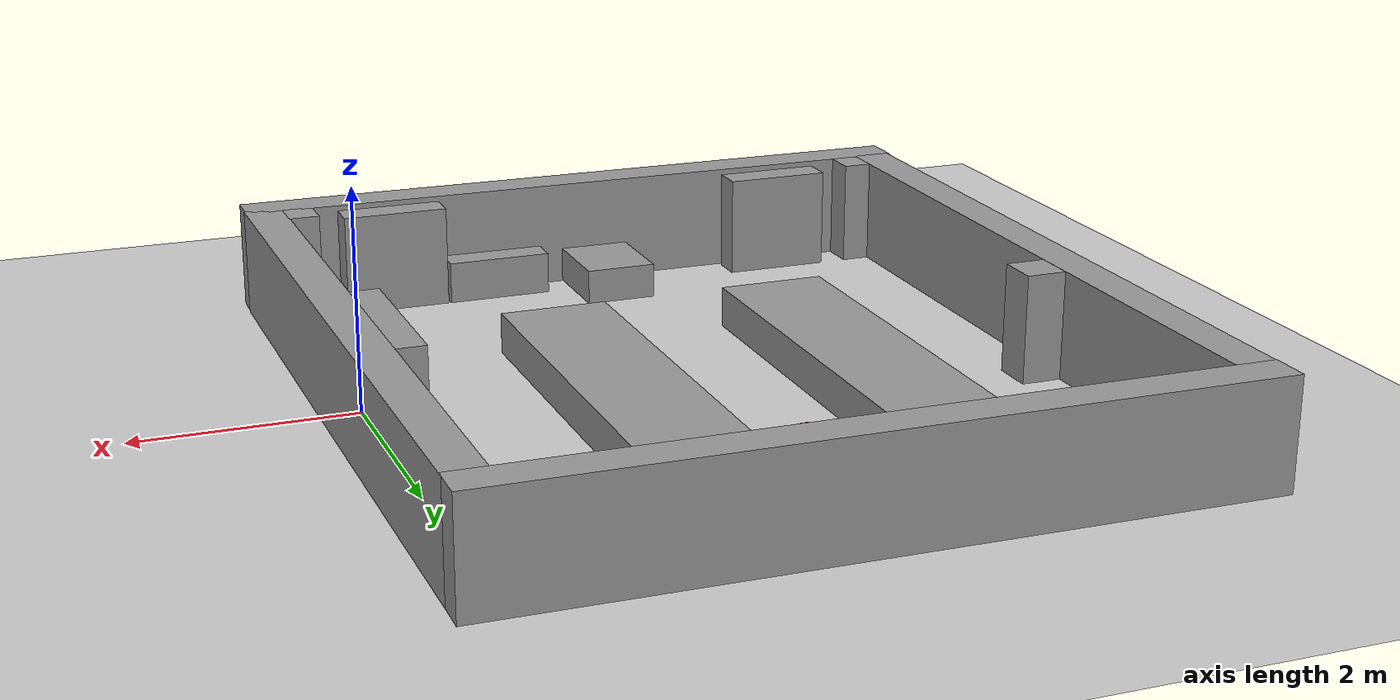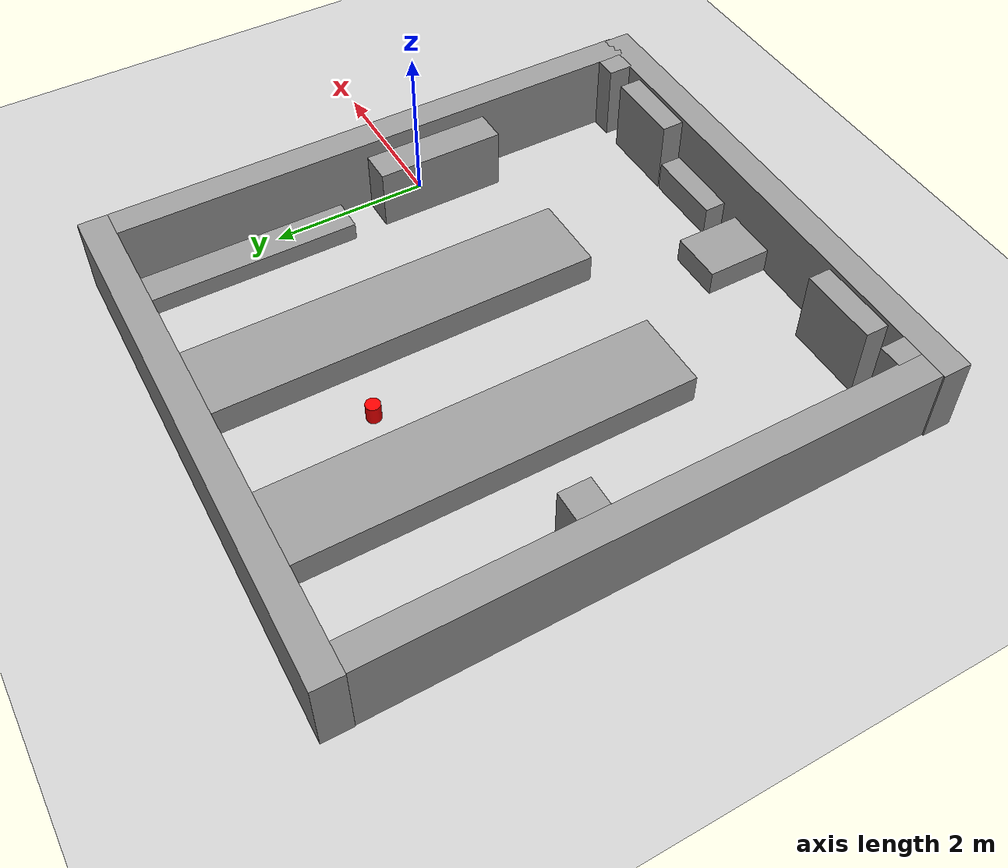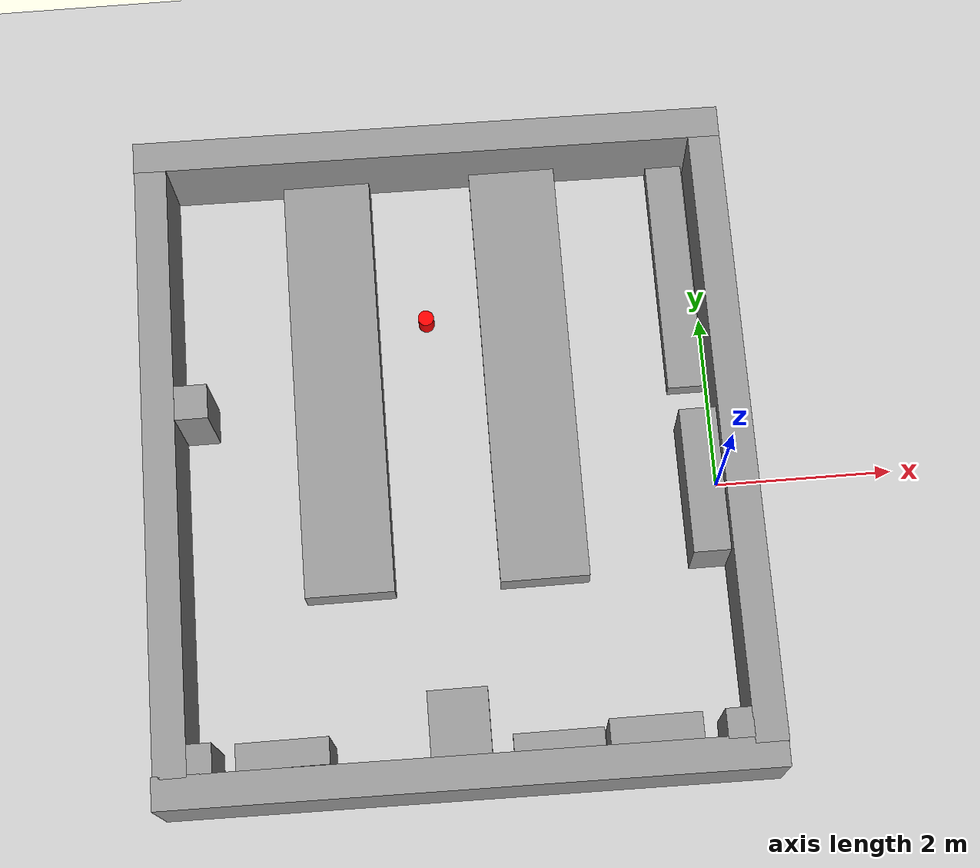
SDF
<sdf version="1.7">
 <world name="default">
  <light name="sun" type="directional">
   <cast_shadows>0</cast_shadows>
   <pose>0 0 10 0 -0 0</pose>
   <diffuse>0.8 0.8 0.8 1</diffuse>
   <specular>0.2 0.2 0.2 1</specular>
   <attenuation>
    <range>1000</range>
    <constant>0.9</constant>
    <linear>0.01</linear>
    <quadratic>0.001</quadratic>
   </attenuation>
   <direction>-0.5 0.1 -0.9</direction>
   <spot><inner_angle>0</inner_angle><outer_angle>0</outer_angle><falloff>0</falloff></spot>
  </light>
  <model name="ground_plane">
   <static>1</static>
   <link name="link">
    <collision name="collision">
     <geometry><plane><normal>0 0 1</normal><size>100 100</size></plane></geometry>
     <surface><friction><ode><mu>100</mu><mu2>50</mu2></ode></friction></surface>
    </collision>
    <visual name="visual">
     <cast_shadows>0</cast_shadows>
     <geometry><plane><normal>0 0 1</normal><size>100 100</size></plane></geometry>
     <material>
      <script><uri>file://media/materials/scripts/gazebo.material</uri><name>Gazebo/Grey</name></script>
     </material>
    </visual>
   </link>
  </model>
  <gravity>0 0 -9.8</gravity>
  <scene><ambient>0.4 0.4 0.4 1</ambient><background>0.7 0.7 0.7 1</background><shadows>1</shadows></scene>
  <magnetic_field>6e-06 2.3e-05 -4.2e-05</magnetic_field>
  <atmosphere type="adiabatic"/>
  <physics type="ode">
   <max_step_size>0.001</max_step_size>
   <real_time_factor>1</real_time_factor>
   <real_time_update_rate>1000</real_time_update_rate>
  </physics>
  <audio><device>default</device></audio>
  <spherical_coordinates>
   <surface_model>EARTH_WGS84</surface_model>
   <latitude_deg>0</latitude_deg>
   <longitude_deg>0</longitude_deg>
   <elevation>0</elevation>
   <heading_deg>0</heading_deg>
  </spherical_coordinates>
  <model name="unit_wall">
   <link name="link">
    <inertial>
     <mass>2.52337</mass>
     <inertia><ixx>10.3518</ixx><ixy>0</ixy><ixz>0</ixz><iyy>0.238043</iyy><iyz>0</iyz><izz>10.1693</izz></inertia>
    </inertial>
    <pose>-0.734513 -2.0159 0 0 -0 0</pose>
    <visual name="visual">
     <geometry><box><size>0.363354 6.94468 1</size></box></geometry>
     <material>
      <script><name>Gazebo/Grey</name><uri>file://media/materials/scripts/gazebo.material</uri></script>
      <shader type="pixel"/>
     </material>
    </visual>
    <collision name="collision">
     <geometry><box><size>0.363354 6.94468 1</size></box></geometry>
     <surface>
      <friction>
       <ode><mu>1</mu><mu2>1</mu2><fdir1>0 0 0</fdir1><slip1>0</slip1><slip2>0</slip2></ode>
       <torsional>
        <coefficient>1</coefficient>
        <patch_radius>0</patch_radius>
        <surface_radius>0</surface_radius>
        <use_patch_radius>1</use_patch_radius>
        <ode><slip>0</slip></ode>
       </torsional>
      </friction>
      <bounce><restitution_coefficient>0</restitution_coefficient><threshold>1e+06</threshold></bounce>
      <contact>
       <collide_without_contact>0</collide_without_contact>
       <collide_without_contact_bitmask>1</collide_without_contact_bitmask>
       <collide_bitmask>1</collide_bitmask>
       <ode>
        <soft_cfm>0</soft_cfm>
        <soft_erp>0.2</soft_erp>
        <kp>1e+13</kp>
        <kd>1</kd>
        <max_vel>0.01</max_vel>
        <min_depth>0</min_depth>
       </ode>
       <bullet>
        <split_impulse>1</split_impulse>
        <split_impulse_penetration_threshold>-0.01</split_impulse_penetration_threshold>
        <soft_cfm>0</soft_cfm>
        <soft_erp>0.2</soft_erp>
        <kp>1e+13</kp>
        <kd>1</kd>
       </bullet>
      </contact>
     </surface>
    </collision>
   </link>
   <static>0</static>
   <pose>-5.46117 2.50691 0.5 0 -0 0</pose>
  </model>
  <model name="unit_desk_0">
   <link name="link">
    <inertial>
     <mass>0.190266</mass>
     <inertia>
      <ixx>0.0133624</ixx>
      <ixy>0</ixy>
      <ixz>0</ixz>
      <iyy>0.00889628</iyy>
      <iyz>0</iyz>
      <izz>0.0187968</izz>
     </inertia>
    </inertial>
    <visual name="visual">
     <geometry><box><size>0.672244 0.856498 0.330411</size></box></geometry>
     <material>
      <script><name>Gazebo/Grey</name><uri>file://media/materials/scripts/gazebo.material</uri></script>
      <shader type="pixel"/>
     </material>
    </visual>
    <collision name="collision">
     <geometry><box><size>0.672244 0.856498 0.330411</size></box></geometry>
     <surface>
      <friction>
       <ode><mu>1</mu><mu2>1</mu2><fdir1>0 0 0</fdir1><slip1>0</slip1><slip2>0</slip2></ode>
       <torsional>
        <coefficient>1</coefficient>
        <patch_radius>0</patch_radius>
        <surface_radius>0</surface_radius>
        <use_patch_radius>1</use_patch_radius>
        <ode><slip>0</slip></ode>
       </torsional>
      </friction>
      <bounce><restitution_coefficient>0</restitution_coefficient><threshold>1e+06</threshold></bounce>
      <contact>
       <collide_without_contact>0</collide_without_contact>
       <collide_without_contact_bitmask>1</collide_without_contact_bitmask>
       <collide_bitmask>1</collide_bitmask>
       <ode>
        <soft_cfm>0</soft_cfm>
        <soft_erp>0.2</soft_erp>
        <kp>1e+13</kp>
        <kd>1</kd>
        <max_vel>0.01</max_vel>
        <min_depth>0</min_depth>
       </ode>
       <bullet>
        <split_impulse>1</split_impulse>
        <split_impulse_penetration_threshold>-0.01</split_impulse_penetration_threshold>
        <soft_cfm>0</soft_cfm>
        <soft_erp>0.2</soft_erp>
        <kp>1e+13</kp>
        <kd>1</kd>
       </bullet>
      </contact>
     </surface>
    </collision>
   </link>
   <static>0</static>
   <pose>-3.12578 -2.58489 0.171817 0 -0 0</pose>
  </model>
  <model name="unit_desk2">
   <link name="link">
    <inertial>
     <mass>1.84613</mass>
     <inertia><ixx>3.74016</ixx><ixy>0</ixy><ixz>0</ixz><iyy>0.175529</iyy><iyz>0</iyz><izz>3.87232</izz></inertia>
    </inertial>
    <pose>-0.530357 -2.01838 -0.286727 0 -0 0</pose>
    <visual name="visual">
     <geometry><box><size>1 4.91634 0.375437</size></box></geometry>
     <material>
      <script><name>Gazebo/Grey</name><uri>file://media/materials/scripts/gazebo.material</uri></script>
      <shader type="pixel"/>
     </material>
    </visual>
    <collision name="collision">
     <geometry><box><size>1 4.91634 0.375437</size></box></geometry>
     <surface>
      <friction>
       <ode><mu>1</mu><mu2>1</mu2><fdir1>0 0 0</fdir1><slip1>0</slip1><slip2>0</slip2></ode>
       <torsional>
        <coefficient>1</coefficient>
        <patch_radius>0</patch_radius>
        <surface_radius>0</surface_radius>
        <use_patch_radius>1</use_patch_radius>
        <ode><slip>0</slip></ode>
       </torsional>
      </friction>
      <bounce><restitution_coefficient>0</restitution_coefficient><threshold>1e+06</threshold></bounce>
      <contact>
       <collide_without_contact>0</collide_without_contact>
       <collide_without_contact_bitmask>1</collide_without_contact_bitmask>
       <collide_bitmask>1</collide_bitmask>
       <ode>
        <soft_cfm>0</soft_cfm>
        <soft_erp>0.2</soft_erp>
        <kp>1e+13</kp>
        <kd>1</kd>
        <max_vel>0.01</max_vel>
        <min_depth>0</min_depth>
       </ode>
       <bullet>
        <split_impulse>1</split_impulse>
        <split_impulse_penetration_threshold>-0.01</split_impulse_penetration_threshold>
        <soft_cfm>0</soft_cfm>
        <soft_erp>0.2</soft_erp>
        <kp>1e+13</kp>
        <kd>1</kd>
       </bullet>
      </contact>
     </surface>
    </collision>
   </link>
   <static>0</static>
   <pose>-3.7044 3.44703 0.5 0 -0 0</pose>
  </model>
  <model name="unit_desk2_clone">
   <link name="link">
    <inertial>
     <mass>1.84613</mass>
     <inertia><ixx>3.74016</ixx><ixy>0</ixy><ixz>0</ixz><iyy>0.175529</iyy><iyz>0</iyz><izz>3.87232</izz></inertia>
    </inertial>
    <pose>-0.530357 -2.01838 -0.286727 0 -0 0</pose>
    <visual name="visual">
     <geometry><box><size>1 4.91634 0.375437</size></box></geometry>
     <material>
      <script><name>Gazebo/Grey</name><uri>file://media/materials/scripts/gazebo.material</uri></script>
      <shader type="pixel"/>
     </material>
    </visual>
    <collision name="collision">
     <geometry><box><size>1 4.91634 0.375437</size></box></geometry>
     <surface>
      <friction>
       <ode><mu>1</mu><mu2>1</mu2><fdir1>0 0 0</fdir1><slip1>0</slip1><slip2>0</slip2></ode>
       <torsional>
        <coefficient>1</coefficient>
        <patch_radius>0</patch_radius>
        <surface_radius>0</surface_radius>
        <use_patch_radius>1</use_patch_radius>
        <ode><slip>0</slip></ode>
       </torsional>
      </friction>
      <bounce><restitution_coefficient>0</restitution_coefficient><threshold>1e+06</threshold></bounce>
      <contact>
       <collide_without_contact>0</collide_without_contact>
       <collide_without_contact_bitmask>1</collide_without_contact_bitmask>
       <collide_bitmask>1</collide_bitmask>
       <ode>
        <soft_cfm>0</soft_cfm>
        <soft_erp>0.2</soft_erp>
        <kp>1e+13</kp>
        <kd>1</kd>
        <max_vel>0.01</max_vel>
        <min_depth>0</min_depth>
       </ode>
       <bullet>
        <split_impulse>1</split_impulse>
        <split_impulse_penetration_threshold>-0.01</split_impulse_penetration_threshold>
        <soft_cfm>0</soft_cfm>
        <soft_erp>0.2</soft_erp>
        <kp>1e+13</kp>
        <kd>1</kd>
       </bullet>
      </contact>
     </surface>
    </collision>
   </link>
   <static>0</static>
   <pose>-1.52668 3.4568 0.5 0 -0 0</pose>
  </model>
  <model name="unit_storeage">
   <link name="link">
    <inertial>
     <mass>0.122132</mass>
     <inertia>
      <ixx>0.00263434</ixx>
      <ixy>0</ixy>
      <ixz>0</ixz>
      <iyy>0.0119304</iyy>
      <iyz>0</iyz>
      <izz>0.0110593</izz>
     </inertia>
    </inertial>
    <pose>-0.029061 0.015014 0 0 -0 0</pose>
    <visual name="visual">
     <geometry><box><size>1 0.29432 0.414982</size></box></geometry>
     <material>
      <script><name>Gazebo/Grey</name><uri>file://media/materials/scripts/gazebo.material</uri></script>
      <shader type="pixel"/>
     </material>
    </visual>
    <collision name="collision">
     <geometry><box><size>1 0.29432 0.414982</size></box></geometry>
     <surface>
      <friction>
       <ode><mu>1</mu><mu2>1</mu2><fdir1>0 0 0</fdir1><slip1>0</slip1><slip2>0</slip2></ode>
       <torsional>
        <coefficient>1</coefficient>
        <patch_radius>0</patch_radius>
        <surface_radius>0</surface_radius>
        <use_patch_radius>1</use_patch_radius>
        <ode><slip>0</slip></ode>
       </torsional>
      </friction>
      <bounce><restitution_coefficient>0</restitution_coefficient><threshold>1e+06</threshold></bounce>
      <contact>
       <collide_without_contact>0</collide_without_contact>
       <collide_without_contact_bitmask>1</collide_without_contact_bitmask>
       <collide_bitmask>1</collide_bitmask>
       <ode>
        <soft_cfm>0</soft_cfm>
        <soft_erp>0.2</soft_erp>
        <kp>1e+13</kp>
        <kd>1</kd>
        <max_vel>0.01</max_vel>
        <min_depth>0</min_depth>
       </ode>
       <bullet>
        <split_impulse>1</split_impulse>
        <split_impulse_penetration_threshold>-0.01</split_impulse_penetration_threshold>
        <soft_cfm>0</soft_cfm>
        <soft_erp>0.2</soft_erp>
        <kp>1e+13</kp>
        <kd>1</kd>
       </bullet>
      </contact>
     </surface>
    </collision>
   </link>
   <static>0</static>
   <pose>-2.02423 -2.87506 0.179284 0 -0 0</pose>
  </model>
  <model name="unit_storeage_clone">
   <link name="link">
    <inertial>
     <mass>0.283755</mass>
     <inertia>
      <ixx>0.0240294</ixx>
      <ixy>0</ixy>
      <ixz>0</ixz>
      <iyy>0.0456273</iyy>
      <iyz>0</iyz>
      <izz>0.0256946</izz>
     </inertia>
    </inertial>
    <pose>-0.029061 0.015014 0.287077 0 -0 0</pose>
    <visual name="visual">
     <geometry><box><size>1 0.29432 0.964148</size></box></geometry>
     <material>
      <script><name>Gazebo/Grey</name><uri>file://media/materials/scripts/gazebo.material</uri></script>
      <shader type="pixel"/>
     </material>
    </visual>
    <collision name="collision">
     <geometry><box><size>1 0.29432 0.964148</size></box></geometry>
     <surface>
      <friction>
       <ode><mu>1</mu><mu2>1</mu2><fdir1>0 0 0</fdir1><slip1>0</slip1><slip2>0</slip2></ode>
       <torsional>
        <coefficient>1</coefficient>
        <patch_radius>0</patch_radius>
        <surface_radius>0</surface_radius>
        <use_patch_radius>1</use_patch_radius>
        <ode><slip>0</slip></ode>
       </torsional>
      </friction>
      <bounce><restitution_coefficient>0</restitution_coefficient><threshold>1e+06</threshold></bounce>
      <contact>
       <collide_without_contact>0</collide_without_contact>
       <collide_without_contact_bitmask>1</collide_without_contact_bitmask>
       <collide_bitmask>1</collide_bitmask>
       <ode>
        <soft_cfm>0</soft_cfm>
        <soft_erp>0.2</soft_erp>
        <kp>1e+13</kp>
        <kd>1</kd>
        <max_vel>0.01</max_vel>
        <min_depth>0</min_depth>
       </ode>
       <bullet>
        <split_impulse>1</split_impulse>
        <split_impulse_penetration_threshold>-0.01</split_impulse_penetration_threshold>
        <soft_cfm>0</soft_cfm>
        <soft_erp>0.2</soft_erp>
        <kp>1e+13</kp>
        <kd>1</kd>
       </bullet>
      </contact>
     </surface>
    </collision>
   </link>
   <link name="link_0">
    <inertial>
     <mass>0.09311</mass>
     <inertia>
      <ixx>0.00857543</ixx>
      <ixy>0</ixy>
      <ixz>0</ixz>
      <iyy>0.00839862</iyy>
      <iyz>0</iyz>
      <izz>0.00145572</izz>
     </inertia>
    </inertial>
    <pose>0.856069 0.001923 0.320716 0 -0 0</pose>
    <visual name="visual">
     <geometry><box><size>0.287077 0.324346 1</size></box></geometry>
     <material>
      <lighting>1</lighting>
      <script><uri>file://media/materials/scripts/gazebo.material</uri><name>Gazebo/Grey</name></script>
      <shader type="pixel"/>
     </material>
    </visual>
    <collision name="collision">
     <geometry><box><size>0.287077 0.324346 1</size></box></geometry>
     <surface>
      <friction>
       <ode><mu>1</mu><mu2>1</mu2><fdir1>0 0 0</fdir1><slip1>0</slip1><slip2>0</slip2></ode>
       <torsional>
        <coefficient>1</coefficient>
        <patch_radius>0</patch_radius>
        <surface_radius>0</surface_radius>
        <use_patch_radius>1</use_patch_radius>
        <ode><slip>0</slip></ode>
       </torsional>
      </friction>
      <bounce><restitution_coefficient>0</restitution_coefficient><threshold>1e+06</threshold></bounce>
      <contact>
       <collide_without_contact>0</collide_without_contact>
       <collide_without_contact_bitmask>1</collide_without_contact_bitmask>
       <collide_bitmask>1</collide_bitmask>
       <ode>
        <soft_cfm>0</soft_cfm>
        <soft_erp>0.2</soft_erp>
        <kp>1e+13</kp>
        <kd>1</kd>
        <max_vel>0.01</max_vel>
        <min_depth>0</min_depth>
       </ode>
       <bullet>
        <split_impulse>1</split_impulse>
        <split_impulse_penetration_threshold>-0.01</split_impulse_penetration_threshold>
        <soft_cfm>0</soft_cfm>
        <soft_erp>0.2</soft_erp>
        <kp>1e+13</kp>
        <kd>1</kd>
       </bullet>
      </contact>
     </surface>
    </collision>
   </link>
   <static>0</static>
   <pose>-0.997676 -2.87732 0.179284 0 -0 0</pose>
  </model>
  <model name="unit_wall_clone_1">
   <link name="link">
    <inertial>
     <mass>2.45042</mass>
     <inertia><ixx>9.49131</ixx><ixy>0</ixy><ixz>0</ixz><iyy>0.231161</iyy><iyz>0</iyz><izz>9.31407</izz></inertia>
    </inertial>
    <pose>-0.76105 -2.0159 0 0 -0 0</pose>
    <visual name="visual">
     <geometry><box><size>0.363354 6.7439 1</size></box></geometry>
     <material>
      <script><name>Gazebo/Grey</name><uri>file://media/materials/scripts/gazebo.material</uri></script>
      <shader type="pixel"/>
     </material>
    </visual>
    <collision name="collision">
     <geometry><box><size>0.363354 6.7439 1</size></box></geometry>
     <surface>
      <friction>
       <ode><mu>1</mu><mu2>1</mu2><fdir1>0 0 0</fdir1><slip1>0</slip1><slip2>0</slip2></ode>
       <torsional>
        <coefficient>1</coefficient>
        <patch_radius>0</patch_radius>
        <surface_radius>0</surface_radius>
        <use_patch_radius>1</use_patch_radius>
        <ode><slip>0</slip></ode>
       </torsional>
      </friction>
      <bounce><restitution_coefficient>0</restitution_coefficient><threshold>1e+06</threshold></bounce>
      <contact>
       <collide_without_contact>0</collide_without_contact>
       <collide_without_contact_bitmask>1</collide_without_contact_bitmask>
       <collide_bitmask>1</collide_bitmask>
       <ode>
        <soft_cfm>0</soft_cfm>
        <soft_erp>0.2</soft_erp>
        <kp>1e+13</kp>
        <kd>1</kd>
        <max_vel>0.01</max_vel>
        <min_depth>0</min_depth>
       </ode>
       <bullet>
        <split_impulse>1</split_impulse>
        <split_impulse_penetration_threshold>-0.01</split_impulse_penetration_threshold>
        <soft_cfm>0</soft_cfm>
        <soft_erp>0.2</soft_erp>
        <kp>1e+13</kp>
        <kd>1</kd>
       </bullet>
      </contact>
     </surface>
    </collision>
   </link>
   <static>0</static>
   <pose>-1.0166 -3.94704 0.5 0 0 -1.58124</pose>
  </model>
  <model name="unit_wall_clone_1_clone">
   <link name="link">
    <inertial>
     <mass>2.45042</mass>
     <inertia><ixx>9.49131</ixx><ixy>0</ixy><ixz>0</ixz><iyy>0.231161</iyy><iyz>0</iyz><izz>9.31407</izz></inertia>
    </inertial>
    <pose>-0.76105 -2.0159 0 0 -0 0</pose>
    <visual name="visual">
     <geometry><box><size>0.363354 6.7439 1</size></box></geometry>
     <material>
      <script><name>Gazebo/Grey</name><uri>file://media/materials/scripts/gazebo.material</uri></script>
      <shader type="pixel"/>
     </material>
    </visual>
    <collision name="collision">
     <geometry><box><size>0.363354 6.7439 1</size></box></geometry>
     <surface>
      <friction>
       <ode><mu>1</mu><mu2>1</mu2><fdir1>0 0 0</fdir1><slip1>0</slip1><slip2>0</slip2></ode>
       <torsional>
        <coefficient>1</coefficient>
        <patch_radius>0</patch_radius>
        <surface_radius>0</surface_radius>
        <use_patch_radius>1</use_patch_radius>
        <ode><slip>0</slip></ode>
       </torsional>
      </friction>
      <bounce><restitution_coefficient>0</restitution_coefficient><threshold>1e+06</threshold></bounce>
      <contact>
       <collide_without_contact>0</collide_without_contact>
       <collide_without_contact_bitmask>1</collide_without_contact_bitmask>
       <collide_bitmask>1</collide_bitmask>
       <ode>
        <soft_cfm>0</soft_cfm>
        <soft_erp>0.2</soft_erp>
        <kp>1e+13</kp>
        <kd>1</kd>
        <max_vel>0.01</max_vel>
        <min_depth>0</min_depth>
       </ode>
       <bullet>
        <split_impulse>1</split_impulse>
        <split_impulse_penetration_threshold>-0.01</split_impulse_penetration_threshold>
        <soft_cfm>0</soft_cfm>
        <soft_erp>0.2</soft_erp>
        <kp>1e+13</kp>
        <kd>1</kd>
       </bullet>
      </contact>
     </surface>
    </collision>
   </link>
   <static>0</static>
   <pose>-1.00511 3.32586 0.5 0 0 -1.58124</pose>
  </model>
  <model name="unit_wall_clone">
   <link name="link">
    <inertial>
     <mass>2.59195</mass>
     <inertia><ixx>11.207</ixx><ixy>0</ixy><ixz>0</ixz><iyy>0.244513</iyy><iyz>0</iyz><izz>11.0196</izz></inertia>
    </inertial>
    <pose>-0.734513 -2.0159 0 0 -0 0</pose>
    <visual name="visual">
     <geometry><box><size>0.363354 7.13341 1</size></box></geometry>
     <material>
      <script><name>Gazebo/Grey</name><uri>file://media/materials/scripts/gazebo.material</uri></script>
      <shader type="pixel"/>
     </material>
    </visual>
    <collision name="collision">
     <geometry><box><size>0.363354 7.13341 1</size></box></geometry>
     <surface>
      <friction>
       <ode><mu>1</mu><mu2>1</mu2><fdir1>0 0 0</fdir1><slip1>0</slip1><slip2>0</slip2></ode>
       <torsional>
        <coefficient>1</coefficient>
        <patch_radius>0</patch_radius>
        <surface_radius>0</surface_radius>
        <use_patch_radius>1</use_patch_radius>
        <ode><slip>0</slip></ode>
       </torsional>
      </friction>
      <bounce><restitution_coefficient>0</restitution_coefficient><threshold>1e+06</threshold></bounce>
      <contact>
       <collide_without_contact>0</collide_without_contact>
       <collide_without_contact_bitmask>1</collide_without_contact_bitmask>
       <collide_bitmask>1</collide_bitmask>
       <ode>
        <soft_cfm>0</soft_cfm>
        <soft_erp>0.2</soft_erp>
        <kp>1e+13</kp>
        <kd>1</kd>
        <max_vel>0.01</max_vel>
        <min_depth>0</min_depth>
       </ode>
       <bullet>
        <split_impulse>1</split_impulse>
        <split_impulse_penetration_threshold>-0.01</split_impulse_penetration_threshold>
        <soft_cfm>0</soft_cfm>
        <soft_erp>0.2</soft_erp>
        <kp>1e+13</kp>
        <kd>1</kd>
       </bullet>
      </contact>
     </surface>
    </collision>
   </link>
   <static>0</static>
   <pose>0.910428 2.47745 0.5 0 -0 0</pose>
  </model>
  <model name="unit_storeage_clone_clone">
   <link name="link">
    <inertial>
     <mass>0.283755</mass>
     <inertia>
      <ixx>0.0240294</ixx>
      <ixy>0</ixy>
      <ixz>0</ixz>
      <iyy>0.0456273</iyy>
      <iyz>0</iyz>
      <izz>0.0256946</izz>
     </inertia>
    </inertial>
    <pose>-0.029061 0.015014 0.287077 0 -0 0</pose>
    <visual name="visual">
     <geometry><box><size>1 0.29432 0.964148</size></box></geometry>
     <material>
      <script><name>Gazebo/Grey</name><uri>file://media/materials/scripts/gazebo.material</uri></script>
      <shader type="pixel"/>
     </material>
    </visual>
    <collision name="collision">
     <geometry><box><size>1 0.29432 0.964148</size></box></geometry>
     <surface>
      <friction>
       <ode><mu>1</mu><mu2>1</mu2><fdir1>0 0 0</fdir1><slip1>0</slip1><slip2>0</slip2></ode>
       <torsional>
        <coefficient>1</coefficient>
        <patch_radius>0</patch_radius>
        <surface_radius>0</surface_radius>
        <use_patch_radius>1</use_patch_radius>
        <ode><slip>0</slip></ode>
       </torsional>
      </friction>
      <bounce><restitution_coefficient>0</restitution_coefficient><threshold>1e+06</threshold></bounce>
      <contact>
       <collide_without_contact>0</collide_without_contact>
       <collide_without_contact_bitmask>1</collide_without_contact_bitmask>
       <collide_bitmask>1</collide_bitmask>
       <ode>
        <soft_cfm>0</soft_cfm>
        <soft_erp>0.2</soft_erp>
        <kp>1e+13</kp>
        <kd>1</kd>
        <max_vel>0.01</max_vel>
        <min_depth>0</min_depth>
       </ode>
       <bullet>
        <split_impulse>1</split_impulse>
        <split_impulse_penetration_threshold>-0.01</split_impulse_penetration_threshold>
        <soft_cfm>0</soft_cfm>
        <soft_erp>0.2</soft_erp>
        <kp>1e+13</kp>
        <kd>1</kd>
       </bullet>
      </contact>
     </surface>
    </collision>
   </link>
   <link name="link_0">
    <inertial>
     <mass>0.09311</mass>
     <inertia>
      <ixx>0.00857543</ixx>
      <ixy>0</ixy>
      <ixz>0</ixz>
      <iyy>0.00839862</iyy>
      <iyz>0</iyz>
      <izz>0.00145572</izz>
     </inertia>
    </inertial>
    <pose>0.856069 0.001923 0.320716 0 -0 0</pose>
    <visual name="visual">
     <geometry><box><size>0.287077 0.324346 1</size></box></geometry>
     <material>
      <lighting>1</lighting>
      <script><uri>file://media/materials/scripts/gazebo.material</uri><name>Gazebo/Grey</name></script>
      <shader type="pixel"/>
     </material>
    </visual>
    <collision name="collision">
     <geometry><box><size>0.287077 0.324346 1</size></box></geometry>
     <surface>
      <friction>
       <ode><mu>1</mu><mu2>1</mu2><fdir1>0 0 0</fdir1><slip1>0</slip1><slip2>0</slip2></ode>
       <torsional>
        <coefficient>1</coefficient>
        <patch_radius>0</patch_radius>
        <surface_radius>0</surface_radius>
        <use_patch_radius>1</use_patch_radius>
        <ode><slip>0</slip></ode>
       </torsional>
      </friction>
      <bounce><restitution_coefficient>0</restitution_coefficient><threshold>1e+06</threshold></bounce>
      <contact>
       <collide_without_contact>0</collide_without_contact>
       <collide_without_contact_bitmask>1</collide_without_contact_bitmask>
       <collide_bitmask>1</collide_bitmask>
       <ode>
        <soft_cfm>0</soft_cfm>
        <soft_erp>0.2</soft_erp>
        <kp>1e+13</kp>
        <kd>1</kd>
        <max_vel>0.01</max_vel>
        <min_depth>0</min_depth>
       </ode>
       <bullet>
        <split_impulse>1</split_impulse>
        <split_impulse_penetration_threshold>-0.01</split_impulse_penetration_threshold>
        <soft_cfm>0</soft_cfm>
        <soft_erp>0.2</soft_erp>
        <kp>1e+13</kp>
        <kd>1</kd>
       </bullet>
      </contact>
     </surface>
    </collision>
   </link>
   <static>0</static>
   <pose>-5.0325 -2.79304 0.179284 0 0 -3.14066</pose>
  </model>
  <model name="unit_desk2_0">
   <link name="link">
    <inertial>
     <mass>0.286018</mass>
     <inertia>
      <ixx>0.181739</ixx>
      <ixy>0</ixy>
      <ixz>0</ixz>
      <iyy>0.00564905</iyy>
      <iyz>0</iyz>
      <izz>0.184445</izz>
     </inertia>
    </inertial>
    <pose>0.204557 1.28457 -0.396318 0 -0 0</pose>
    <visual name="visual">
     <geometry><box><size>0.418651 2.75013 0.248475</size></box></geometry>
     <material>
      <script><name>Gazebo/Grey</name><uri>file://media/materials/scripts/gazebo.material</uri></script>
      <shader type="pixel"/>
     </material>
    </visual>
    <collision name="collision">
     <geometry><box><size>0.418651 2.75013 0.248475</size></box></geometry>
     <surface>
      <friction>
       <ode><mu>1</mu><mu2>1</mu2><fdir1>0 0 0</fdir1><slip1>0</slip1><slip2>0</slip2></ode>
       <torsional>
        <coefficient>1</coefficient>
        <patch_radius>0</patch_radius>
        <surface_radius>0</surface_radius>
        <use_patch_radius>1</use_patch_radius>
        <ode><slip>0</slip></ode>
       </torsional>
      </friction>
      <bounce><restitution_coefficient>0</restitution_coefficient><threshold>1e+06</threshold></bounce>
      <contact>
       <collide_without_contact>0</collide_without_contact>
       <collide_without_contact_bitmask>1</collide_without_contact_bitmask>
       <collide_bitmask>1</collide_bitmask>
       <ode>
        <soft_cfm>0</soft_cfm>
        <soft_erp>0.2</soft_erp>
        <kp>1e+13</kp>
        <kd>1</kd>
        <max_vel>0.01</max_vel>
        <min_depth>0</min_depth>
       </ode>
       <bullet>
        <split_impulse>1</split_impulse>
        <split_impulse_penetration_threshold>-0.01</split_impulse_penetration_threshold>
        <soft_cfm>0</soft_cfm>
        <soft_erp>0.2</soft_erp>
        <kp>1e+13</kp>
        <kd>1</kd>
       </bullet>
      </contact>
     </surface>
    </collision>
   </link>
   <static>0</static>
   <pose>-0.455509 1.22591 0.5 0 -0 0</pose>
  </model>
  <model name="unit_storage_long">
   <link name="link">
    <inertial>
     <mass>0.584149</mass>
     <inertia>
      <ixx>0.163479</ixx>
      <ixy>0</ixy>
      <ixz>0</ixz>
      <iyy>0.0412187</iyy>
      <iyz>0</iyz>
      <izz>0.141051</izz>
     </inertia>
    </inertial>
    <pose>-0.095012 -0.501781 0 0 -0 0</pose>
    <visual name="visual">
     <geometry><box><size>0.439322 1.64456 0.808541</size></box></geometry>
     <material>
      <script><name>Gazebo/Grey</name><uri>file://media/materials/scripts/gazebo.material</uri></script>
      <shader type="pixel"/>
     </material>
    </visual>
    <collision name="collision">
     <geometry><box><size>0.439322 1.64456 0.808541</size></box></geometry>
     <surface>
      <friction>
       <ode><mu>1</mu><mu2>1</mu2><fdir1>0 0 0</fdir1><slip1>0</slip1><slip2>0</slip2></ode>
       <torsional>
        <coefficient>1</coefficient>
        <patch_radius>0</patch_radius>
        <surface_radius>0</surface_radius>
        <use_patch_radius>1</use_patch_radius>
        <ode><slip>0</slip></ode>
       </torsional>
      </friction>
      <bounce><restitution_coefficient>0</restitution_coefficient><threshold>1e+06</threshold></bounce>
      <contact>
       <collide_without_contact>0</collide_without_contact>
       <collide_without_contact_bitmask>1</collide_without_contact_bitmask>
       <collide_bitmask>1</collide_bitmask>
       <ode>
        <soft_cfm>0</soft_cfm>
        <soft_erp>0.2</soft_erp>
        <kp>1e+13</kp>
        <kd>1</kd>
        <max_vel>0.01</max_vel>
        <min_depth>0</min_depth>
       </ode>
       <bullet>
        <split_impulse>1</split_impulse>
        <split_impulse_penetration_threshold>-0.01</split_impulse_penetration_threshold>
        <soft_cfm>0</soft_cfm>
        <soft_erp>0.2</soft_erp>
        <kp>1e+13</kp>
        <kd>1</kd>
       </bullet>
      </contact>
     </surface>
    </collision>
   </link>
   <static>0</static>
   <pose>-0.10634 0.377762 0.388182 0 -0 0</pose>
  </model>
  <model name="unit_pillar">
   <link name="link">
    <inertial>
     <mass>0.151763</mass>
     <inertia>
      <ixx>0.0145966</ixx>
      <ixy>0</ixy>
      <ixz>0</ixz>
      <iyy>0.0145361</iyy>
      <iyz>0</iyz>
      <izz>0.00383886</izz>
     </inertia>
    </inertial>
    <pose>-0.141032 0.608065 0 0 -0 0</pose>
    <visual name="visual">
     <geometry><box><size>0.386493 0.392637 1</size></box></geometry>
     <material>
      <script><name>Gazebo/Grey</name><uri>file://media/materials/scripts/gazebo.material</uri></script>
      <shader type="pixel"/>
     </material>
    </visual>
    <collision name="collision">
     <geometry><box><size>0.386493 0.392637 1</size></box></geometry>
     <surface>
      <friction>
       <ode><mu>1</mu><mu2>1</mu2><fdir1>0 0 0</fdir1><slip1>0</slip1><slip2>0</slip2></ode>
       <torsional>
        <coefficient>1</coefficient>
        <patch_radius>0</patch_radius>
        <surface_radius>0</surface_radius>
        <use_patch_radius>1</use_patch_radius>
        <ode><slip>0</slip></ode>
       </torsional>
      </friction>
      <bounce><restitution_coefficient>0</restitution_coefficient><threshold>1e+06</threshold></bounce>
      <contact>
       <collide_without_contact>0</collide_without_contact>
       <collide_without_contact_bitmask>1</collide_without_contact_bitmask>
       <collide_bitmask>1</collide_bitmask>
       <ode>
        <soft_cfm>0</soft_cfm>
        <soft_erp>0.2</soft_erp>
        <kp>1e+13</kp>
        <kd>1</kd>
        <max_vel>0.01</max_vel>
        <min_depth>0</min_depth>
       </ode>
       <bullet>
        <split_impulse>1</split_impulse>
        <split_impulse_penetration_threshold>-0.01</split_impulse_penetration_threshold>
        <soft_cfm>0</soft_cfm>
        <soft_erp>0.2</soft_erp>
        <kp>1e+13</kp>
        <kd>1</kd>
       </bullet>
      </contact>
     </surface>
    </collision>
   </link>
   <static>0</static>
   <pose>-5.69611 0.549843 0.498595 0 -0 0</pose>
  </model>
  <model name="unit_cylinder">
   <link name="link">
    <inertial>
     <mass>0.00777969</mass>
     <inertia>
      <ixx>5.18452e-05</ixx>
      <ixy>0</ixy>
      <ixz>0</ixz>
      <iyy>5.18452e-05</iyy>
      <iyz>0</iyz>
      <izz>3.22274e-05</izz>
     </inertia>
    </inertial>
    <pose>-0 0.725211 -0.370415 0 -0 0</pose>
    <visual name="visual">
     <geometry><cylinder><radius>0.0910218</radius><length>0.234766</length></cylinder></geometry>
     <material>
      <script><name>Gazebo/Grey</name><uri>file://media/materials/scripts/gazebo.material</uri></script>
      <shader type="pixel"><normal_map>__default__</normal_map></shader>
      <ambient>1 0 0 0</ambient>
      <diffuse>0.7 0.7 0.7 1</diffuse>
      <specular>0.01 0.01 0.01 1</specular>
      <emissive>0 0 0 1</emissive>
     </material>
    </visual>
    <collision name="collision">
     <geometry><cylinder><radius>0.091022</radius><length>0.234766</length></cylinder></geometry>
     <surface>
      <friction>
       <ode><mu>1</mu><mu2>1</mu2><fdir1>0 0 0</fdir1><slip1>0</slip1><slip2>0</slip2></ode>
       <torsional>
        <coefficient>1</coefficient>
        <patch_radius>0</patch_radius>
        <surface_radius>0</surface_radius>
        <use_patch_radius>1</use_patch_radius>
        <ode><slip>0</slip></ode>
       </torsional>
      </friction>
      <bounce><restitution_coefficient>0</restitution_coefficient><threshold>1e+06</threshold></bounce>
      <contact>
       <collide_without_contact>0</collide_without_contact>
       <collide_without_contact_bitmask>1</collide_without_contact_bitmask>
       <collide_bitmask>1</collide_bitmask>
       <ode>
        <soft_cfm>0</soft_cfm>
        <soft_erp>0.2</soft_erp>
        <kp>1e+13</kp>
        <kd>1</kd>
        <max_vel>0.01</max_vel>
        <min_depth>0</min_depth>
       </ode>
       <bullet>
        <split_impulse>1</split_impulse>
        <split_impulse_penetration_threshold>-0.01</split_impulse_penetration_threshold>
        <soft_cfm>0</soft_cfm>
        <soft_erp>0.2</soft_erp>
        <kp>1e+13</kp>
        <kd>1</kd>
       </bullet>
      </contact>
     </surface>
    </collision>
   </link>
   <static>0</static>
   <pose>-3.1791 1.48396 0.497681 0 -0 1e-06</pose>
  </model>
 </world>
</sdf>
